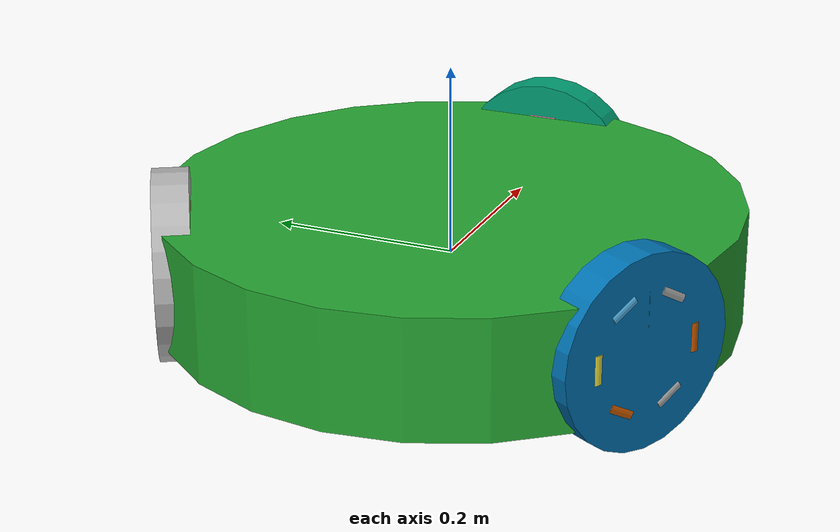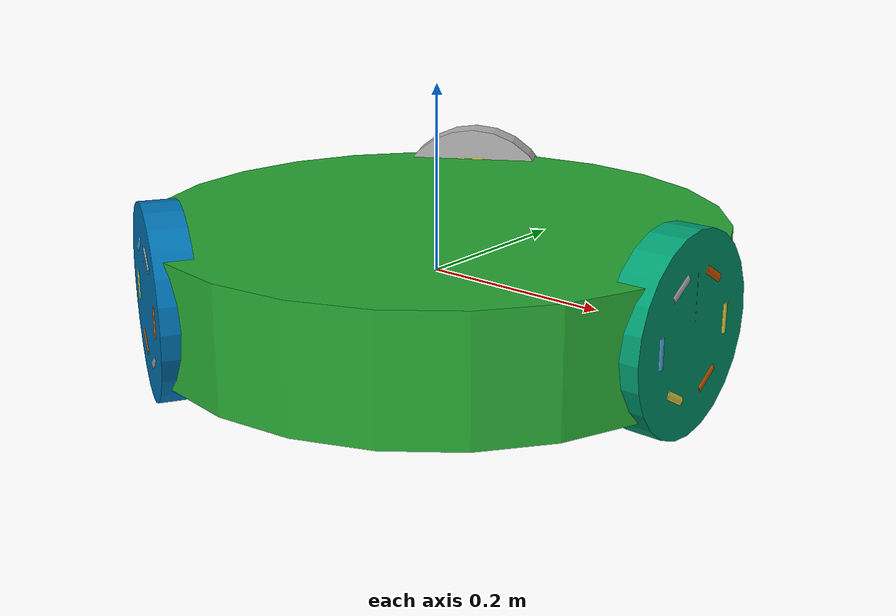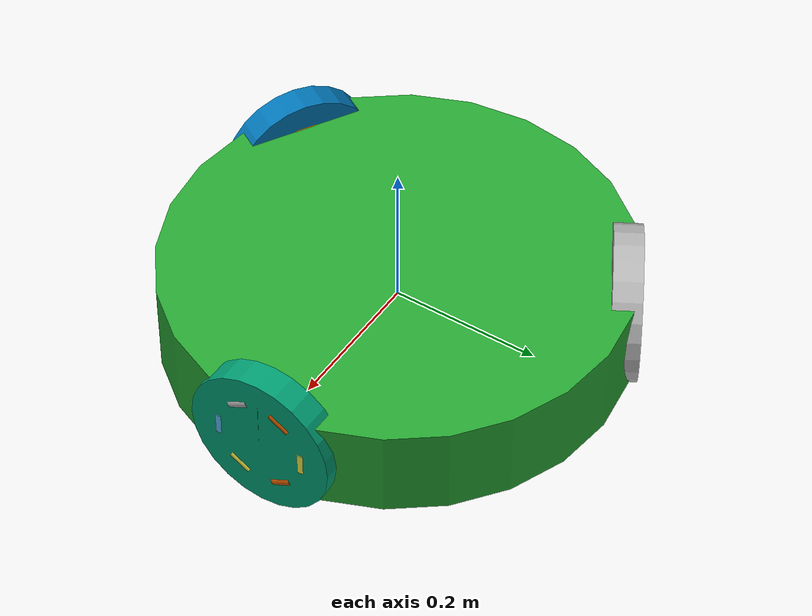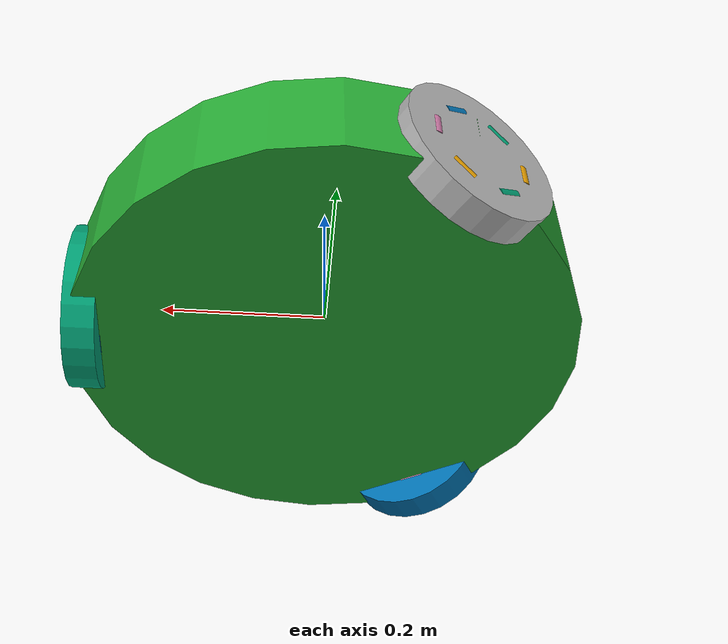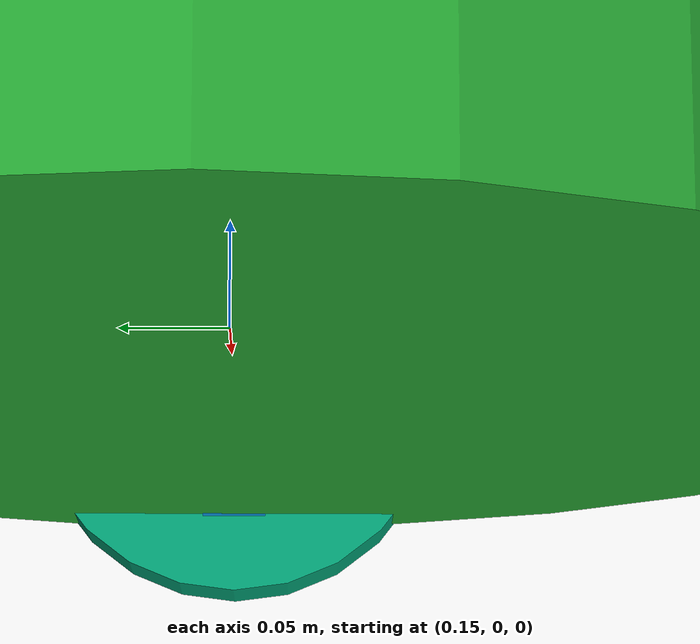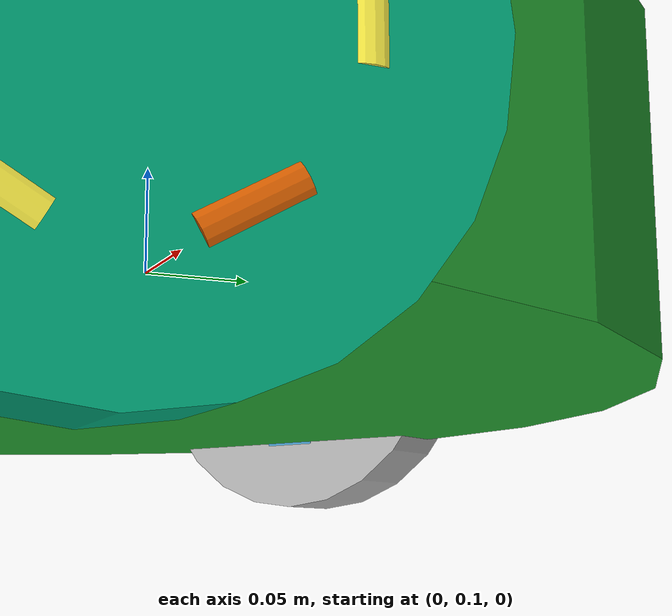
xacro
<?xml version='1.0'?>
<robot name="3_wheel_omni" xmlns:xacro="http://www.ros.org/wiki/xacro">
  <xacro:include filename="$(find gazebo_test)/model/rim.xacro"/>
  <xacro:include filename="$(find gazebo_test)/model/plugins.gazebo"/>

  <!-- World Link -->
  <link name="base_link" />
  <joint name="base_to_chassis" type="fixed">
    <parent link="base_link"/>
    <child link="chassis"/>
  </joint>

  <!-- Chassis -->
  <link name="chassis">
    <visual>
      <geometry>
        <cylinder length="0.126" radius="0.305"/>
      </geometry>
  </visual>

  <!-- Gazebo based -->
  <inertial>
    <origin xyz="0 0 0" rpy="0 0 0" />
    <mass value="1"/>
    <inertia ixx="0.0001" ixy="0.0" ixz="0.0" iyy="0.0001" iyz="0.0" izz="0.0001"/>
  </inertial>

  </link>

  <!--Wheel Rims -->
  <xacro:rim name="wheel_1" parent="chassis" xyz="0.286 0 0" rpy="1.57 0 1.57" GAZEBO_color = "Gazebo/Red"/>
  <xacro:rim name="wheel_2" parent="chassis" xyz="-0.143 0.2477 0" rpy="1.57 0 -2.618" GAZEBO_color = "Gazebo/Blue"/>
  <xacro:rim name="wheel_3" parent="chassis" xyz="-0.143 -0.2477 0" rpy="1.57 0 -0.5236" GAZEBO_color = "Gazebo/Green"/>

</robot>

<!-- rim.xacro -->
<robot xmlns:xacro="http://www.ros.org/wiki/xacro">
<xacro:include filename="$(find gazebo_test)/model/roller.xacro"/>
<xacro:macro name="rim" params="name parent xyz rpy GAZEBO_color">
  <link name="rim_${name}_link">
    <inertial>
      <mass value="0.10"/>
      <inertia ixx="7.6e-5" ixy="0.0" ixz="0.0" iyy="7.6e-5" iyz="0.0" izz="0.000125"/>
    </inertial>
    <visual>
      <geometry>
        <cylinder radius="0.1" length="0.038"/>
      </geometry>
    </visual>
    <collision>
      <geometry>
        <cylinder radius="0.1" length="0.038"/>
      </geometry>
    </collision>
  </link>
  <joint name="${parent}_rim_${name}_joint" type="continuous">
    <parent link="${parent}"/>
    <child link="rim_${name}_link"/>
    <axis xyz = "0 0 1"/>
    <origin
    xyz = "${xyz}"
    rpy = "${rpy}"
    />
    <limit effort="1000" velocity="3140"/>
  </joint>
 <xacro:roller name="6" parent="${name}"  xyz="0.06 0 0.01" rpy="1.57 0 0"/>
  <xacro:roller name="5" parent="${name}"  xyz="0.05196 0.03 -0.01" rpy="1.57 0 0.5233"/>
  <xacro:roller name="4" parent="${name}"  xyz="0.03 0.05196 0.01" rpy="1.57 0 1.0466"/>
  <xacro:roller name="3" parent="${name}"  xyz="0.0 0.06 -0.01" rpy="1.57 0 1.5699"/>
  <xacro:roller name="2" parent="${name}"  xyz="-0.03 0.05196 0.01" rpy="1.57 0 2.0932"/>
  <xacro:roller name="1" parent="${name}"  xyz="-0.05196 0.03 -0.01" rpy="1.57 0 2.6165"/>
  <xacro:roller name="12" parent="${name}" xyz="-0.06 0.00 0.01" rpy="1.57 0 3.1398"/>
  <xacro:roller name="11" parent="${name}" xyz="-0.05196 -0.03 -0.01" rpy="1.57 0 -2.6165"/>
  <xacro:roller name="10" parent="${name}" xyz="-0.03 -0.05196 0.01" rpy="1.57 0 -2.0932"/>
  <xacro:roller name="9" parent="${name}"  xyz="0.0 -0.06 -0.01" rpy="1.57 0 -1.5699"/>
  <xacro:roller name="8" parent="${name}"  xyz="0.03 -0.05196 0.01" rpy="1.57 0 -1.0466"/>
  <xacro:roller name="7" parent="${name}"  xyz="0.05196 -0.03 -0.01" rpy="1.57 0 -0.5233"/>

  <transmission name="${name}_wheel_tran">
    <type>transmission_interface/SimpleTransmission</type>
    <joint name="${parent}_rim_${name}_joint">
      <hardwareInterface>hardware_interface/EffortJointInterface</hardwareInterface>
    </joint>
    <actuator name="${name}_wheel_motor">
      <hardwareInterface>hardware_interface/EffortJointInterface</hardwareInterface>
      <mechanicalReduction>1</mechanicalReduction>
    </actuator>
  </transmission>

  <gazebo reference="rim_${name}_link">
    <material value= "${GAZEBO_color}"/>
  </gazebo>

</xacro:macro>
</robot>

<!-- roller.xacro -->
<robot xmlns:xacro="http://www.ros.org/wiki/xacro">
<xacro:macro name="roller" params="name parent xyz rpy">
  <link name="roller_${name}_rim_${parent}_link">
    <inertial>
      <inertia ixx="1e-6" ixy="0.0" ixz="0.0" iyy="1e-6" iyz="0.0" izz="1e-7"/>
      <mass value="0.010"/>
    </inertial>
    <visual>
      <geometry>
        <cylinder radius="0.01" length="0.03"/>
      </geometry>
    </visual>
    <collision>
      <geometry>
        <cylinder radius="0.01" length="0.03"/>
      </geometry>
    </collision>
  </link>
  <joint name="roller_${name}_rim_${parent}_joint" type="continuous">
    <parent link="rim_${parent}_link"/>
    <child link="roller_${name}_rim_${parent}_link"/>
    <axis xyz="0 0 1"/>
    <origin xyz="${xyz}" rpy="${rpy}"/>
    <limit effort="1000" velocity="31.4"/>
  </joint>
</xacro:macro>
</robot>
